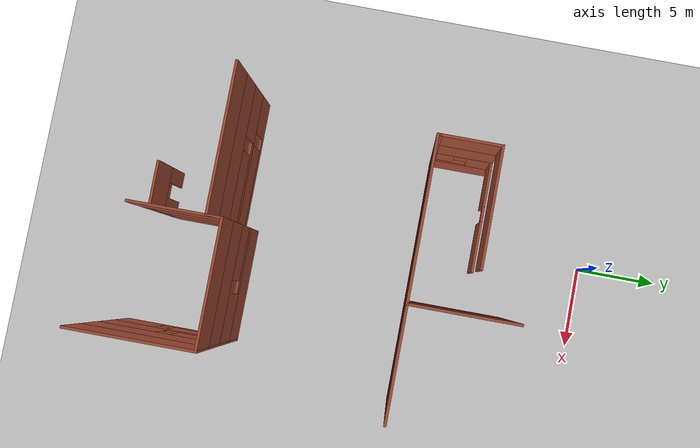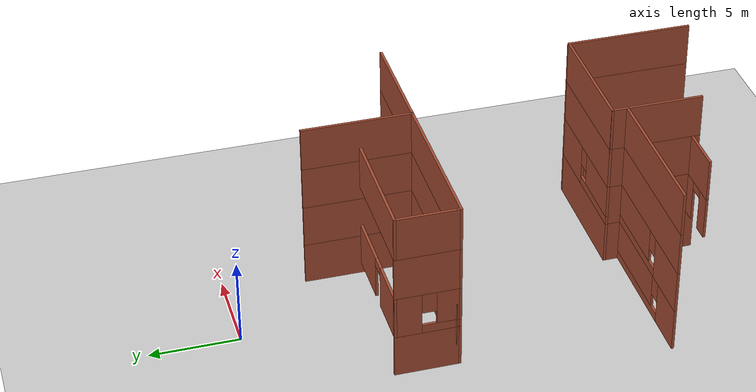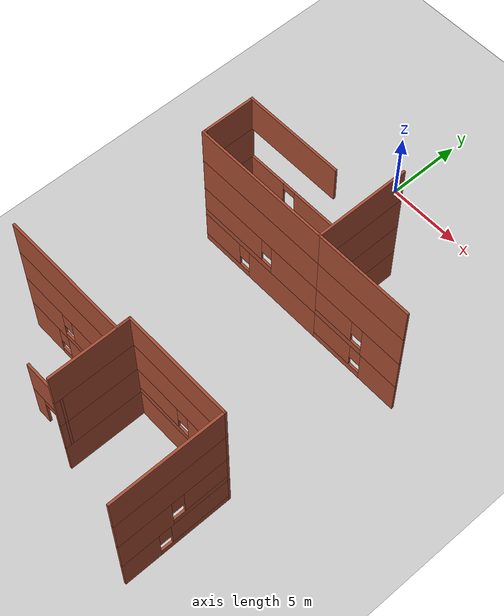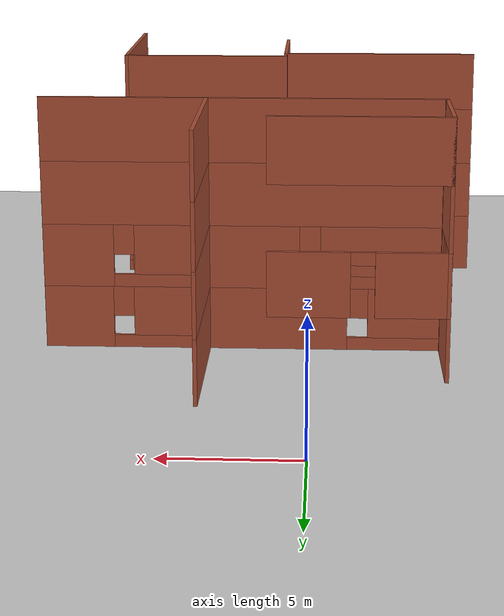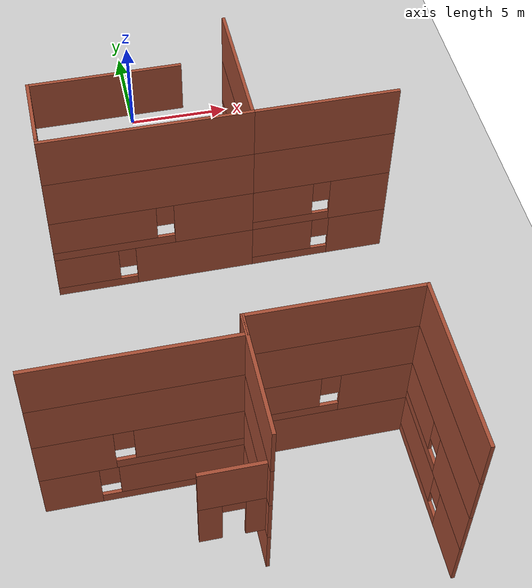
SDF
<sdf version="1.7">
 <world name="default">
  <model name="ground_plane">
   <static>1</static>
   <link name="link">
    <collision name="collision">
     <geometry><plane><normal>0 0 1</normal><size>300 300</size></plane></geometry>
     <surface>
      <contact><collide_bitmask>65535</collide_bitmask></contact>
      <friction><ode><mu>100</mu><mu2>50</mu2></ode></friction>
     </surface>
    </collision>
    <visual name="visual">
     <cast_shadows>0</cast_shadows>
     <geometry><plane><normal>0 0 1</normal><size>300 300</size></plane></geometry>
     <material>
      <script><uri>file://media/materials/scripts/gazebo.material</uri><name>Gazebo/Grey</name></script>
     </material>
    </visual>
   </link>
  </model>
  <model name="Drone_House">
   <pose>2.65602 -2.34694 0 0 -0 0</pose>
   <link name="Wall_100">
    <collision name="Wall_100_Collision">
     <geometry><box><size>6.25 0.15 2.5</size></box></geometry>
     <pose>0 0 1.25 0 -0 0</pose>
    </collision>
    <visual name="Wall_100_Visual">
     <pose>0 0 1.25 0 -0 0</pose>
     <geometry><box><size>6.25 0.15 2.5</size></box></geometry>
     <material>
      <script><uri>file://media/materials/scripts/gazebo.material</uri><name>Gazebo/Bricks</name></script>
      <ambient>1 1 1 1</ambient>
     </material>
     <meta><layer>2</layer></meta>
    </visual>
    <pose>1.37606 -5.3 5 0 -0 1.5708</pose>
   </link>
   <link name="Wall_102">
    <collision name="Wall_102_Collision">
     <geometry><box><size>3.5 0.15 2.5</size></box></geometry>
     <pose>0 0 1.25 0 -0 0</pose>
    </collision>
    <visual name="Wall_102_Visual">
     <pose>0 0 1.25 0 -0 0</pose>
     <geometry><box><size>3.5 0.15 2.5</size></box></geometry>
     <material>
      <script><uri>file://media/materials/scripts/gazebo.material</uri><name>Gazebo/Bricks</name></script>
      <ambient>1 1 1 1</ambient>
     </material>
     <meta><layer>2</layer></meta>
    </visual>
    <pose>-7.72394 -6.525 5 0 -0 -1.5708</pose>
   </link>
   <link name="Wall_103">
    <collision name="Wall_103_Collision">
     <geometry><box><size>0.15 0.15 2.5</size></box></geometry>
     <pose>0 0 1.25 0 -0 0</pose>
    </collision>
    <visual name="Wall_103_Visual">
     <pose>0 0 1.25 0 -0 0</pose>
     <geometry><box><size>0.15 0.15 2.5</size></box></geometry>
     <material>
      <script><uri>file://media/materials/scripts/gazebo.material</uri><name>Gazebo/Bricks</name></script>
      <ambient>1 1 1 1</ambient>
     </material>
     <meta><layer>2</layer></meta>
    </visual>
    <pose>-7.72394 -8.2 5 0 -0 0</pose>
   </link>
   <link name="Wall_104">
    <collision name="Wall_104_Collision">
     <geometry><box><size>9.25 0.15 2.5</size></box></geometry>
     <pose>0 0 1.25 0 -0 0</pose>
    </collision>
    <visual name="Wall_104_Visual">
     <pose>0 0 1.25 0 -0 0</pose>
     <geometry><box><size>9.25 0.15 2.5</size></box></geometry>
     <material>
      <script><uri>file://media/materials/scripts/gazebo.material</uri><name>Gazebo/Bricks</name></script>
      <ambient>1 1 1 1</ambient>
     </material>
     <meta><layer>2</layer></meta>
    </visual>
    <pose>-3.17394 -8.35 5 0 -0 3.14159</pose>
   </link>
   <link name="Wall_107">
    <collision name="Wall_107_Collision">
     <geometry><box><size>6.75 0.15 2.5</size></box></geometry>
     <pose>0 0 1.25 0 -0 0</pose>
    </collision>
    <visual name="Wall_107_Visual">
     <pose>0 0 1.25 0 -0 0</pose>
     <geometry><box><size>6.75 0.15 2.5</size></box></geometry>
     <material>
      <script><uri>file://media/materials/scripts/gazebo.material</uri><name>Gazebo/Bricks</name></script>
      <ambient>1 1 1 1</ambient>
     </material>
     <meta><layer>3</layer></meta>
    </visual>
    <pose>-4.42394 -4.85 7.5 0 -0 0</pose>
   </link>
   <link name="Wall_121">
    <collision name="Wall_121_Collision">
     <geometry><box><size>6.5 0.15 2.5</size></box></geometry>
     <pose>0 0 1.25 0 -0 0</pose>
    </collision>
    <visual name="Wall_121_Visual">
     <pose>0 0 1.25 0 -0 0</pose>
     <geometry><box><size>6.5 0.15 2.5</size></box></geometry>
     <material>
      <script><uri>file://media/materials/scripts/gazebo.material</uri><name>Gazebo/Bricks</name></script>
      <ambient>1 1 1 1</ambient>
     </material>
     <meta><layer>3</layer></meta>
    </visual>
    <pose>4.55106 -8.35 7.5 0 -0 3.14159</pose>
   </link>
   <link name="Wall_122">
    <collision name="Wall_122_Collision">
     <geometry><box><size>6.25 0.15 2.5</size></box></geometry>
     <pose>0 0 1.25 0 -0 0</pose>
    </collision>
    <visual name="Wall_122_Visual">
     <pose>0 0 1.25 0 -0 0</pose>
     <geometry><box><size>6.25 0.15 2.5</size></box></geometry>
     <material>
      <script><uri>file://media/materials/scripts/gazebo.material</uri><name>Gazebo/Bricks</name></script>
      <ambient>1 1 1 1</ambient>
     </material>
     <meta><layer>3</layer></meta>
    </visual>
    <pose>1.37606 -5.3 7.5 0 -0 1.5708</pose>
   </link>
   <link name="Wall_124">
    <collision name="Wall_124_Collision">
     <geometry><box><size>3.5 0.15 2.5</size></box></geometry>
     <pose>0 0 1.25 0 -0 0</pose>
    </collision>
    <visual name="Wall_124_Visual">
     <pose>0 0 1.25 0 -0 0</pose>
     <geometry><box><size>3.5 0.15 2.5</size></box></geometry>
     <material>
      <script><uri>file://media/materials/scripts/gazebo.material</uri><name>Gazebo/Bricks</name></script>
      <ambient>1 1 1 1</ambient>
     </material>
     <meta><layer>3</layer></meta>
    </visual>
    <pose>-7.72394 -6.525 7.5 0 -0 -1.5708</pose>
   </link>
   <link name="Wall_125">
    <collision name="Wall_125_Collision">
     <geometry><box><size>0.15 0.15 2.5</size></box></geometry>
     <pose>0 0 1.25 0 -0 0</pose>
    </collision>
    <visual name="Wall_125_Visual">
     <pose>0 0 1.25 0 -0 0</pose>
     <geometry><box><size>0.15 0.15 2.5</size></box></geometry>
     <material>
      <script><uri>file://media/materials/scripts/gazebo.material</uri><name>Gazebo/Bricks</name></script>
      <ambient>1 1 1 1</ambient>
     </material>
     <meta><layer>3</layer></meta>
    </visual>
    <pose>-7.72394 -8.2 7.5 0 -0 0</pose>
   </link>
   <link name="Wall_126">
    <collision name="Wall_126_Collision">
     <geometry><box><size>9.25 0.15 2.5</size></box></geometry>
     <pose>0 0 1.25 0 -0 0</pose>
    </collision>
    <visual name="Wall_126_Visual">
     <pose>0 0 1.25 0 -0 0</pose>
     <geometry><box><size>9.25 0.15 2.5</size></box></geometry>
     <material>
      <script><uri>file://media/materials/scripts/gazebo.material</uri><name>Gazebo/Bricks</name></script>
      <ambient>1 1 1 1</ambient>
     </material>
     <meta><layer>3</layer></meta>
    </visual>
    <pose>-3.17394 -8.35 7.5 0 -0 3.14159</pose>
   </link>
   <link name="Wall_24">
    <pose>4.55106 -8.35 0 0 -0 3.14159</pose>
    <visual name="Wall_24_Visual_0">
     <pose>-1.89698 0 1.25 0 -0 0</pose>
     <geometry><box><size>2.70603 0.15 2.5</size></box></geometry>
     <material>
      <script><uri>file://media/materials/scripts/gazebo.material</uri><name>Gazebo/Bricks</name></script>
      <ambient>1 1 1 1</ambient>
     </material>
     <meta><layer>0</layer></meta>
    </visual>
    <collision name="Wall_24_Collision_0">
     <geometry><box><size>2.70603 0.15 2.5</size></box></geometry>
     <pose>-1.89698 0 1.25 0 -0 0</pose>
    </collision>
    <visual name="Wall_24_Visual_1">
     <pose>1.35302 0 0.25 0 -0 0</pose>
     <geometry><box><size>3.79397 0.15 0.5</size></box></geometry>
     <material>
      <script><uri>file://media/materials/scripts/gazebo.material</uri><name>Gazebo/Bricks</name></script>
      <ambient>1 1 1 1</ambient>
     </material>
     <meta><layer>0</layer></meta>
    </visual>
    <collision name="Wall_24_Collision_1">
     <geometry><box><size>3.79397 0.15 0.5</size></box></geometry>
     <pose>1.35302 0 0.25 0 -0 0</pose>
    </collision>
    <visual name="Wall_24_Visual_2">
     <pose>1.75301 0 1.5 0 -0 0</pose>
     <geometry><box><size>2.99397 0.15 2</size></box></geometry>
     <material>
      <script><uri>file://media/materials/scripts/gazebo.material</uri><name>Gazebo/Bricks</name></script>
      <ambient>1 1 1 1</ambient>
     </material>
     <meta><layer>0</layer></meta>
    </visual>
    <collision name="Wall_24_Collision_2">
     <geometry><box><size>2.99397 0.15 2</size></box></geometry>
     <pose>1.75301 0 1.5 0 -0 0</pose>
    </collision>
    <visual name="Wall_24_Visual_3">
     <pose>-0.14397 0 1.9 0 -0 0</pose>
     <geometry><box><size>0.8 0.15 1.2</size></box></geometry>
     <material>
      <script><uri>file://media/materials/scripts/gazebo.material</uri><name>Gazebo/Bricks</name></script>
      <ambient>1 1 1 1</ambient>
     </material>
     <meta><layer>0</layer></meta>
    </visual>
    <collision name="Wall_24_Collision_3">
     <geometry><box><size>0.8 0.15 1.2</size></box></geometry>
     <pose>-0.14397 0 1.9 0 -0 0</pose>
    </collision>
   </link>
   <link name="Wall_25">
    <collision name="Wall_25_Collision">
     <geometry><box><size>6.25 0.15 2.5</size></box></geometry>
     <pose>0 0 1.25 0 -0 0</pose>
    </collision>
    <visual name="Wall_25_Visual">
     <pose>0 0 1.25 0 -0 0</pose>
     <geometry><box><size>6.25 0.15 2.5</size></box></geometry>
     <material>
      <script><uri>file://media/materials/scripts/gazebo.material</uri><name>Gazebo/Bricks</name></script>
      <ambient>1 1 1 1</ambient>
     </material>
     <meta><layer>0</layer></meta>
    </visual>
    <pose>1.37606 -5.3 0 0 -0 1.5708</pose>
   </link>
   <link name="Wall_28">
    <collision name="Wall_28_Collision">
     <geometry><box><size>3.5 0.15 2.5</size></box></geometry>
     <pose>0 0 1.25 0 -0 0</pose>
    </collision>
    <visual name="Wall_28_Visual">
     <pose>0 0 1.25 0 -0 0</pose>
     <geometry><box><size>3.5 0.15 2.5</size></box></geometry>
     <material>
      <script><uri>file://media/materials/scripts/gazebo.material</uri><name>Gazebo/Bricks</name></script>
      <ambient>1 1 1 1</ambient>
     </material>
     <meta><layer>0</layer></meta>
    </visual>
    <pose>-7.72394 -6.525 0 0 -0 -1.5708</pose>
   </link>
   <link name="Wall_29">
    <collision name="Wall_29_Collision">
     <geometry><box><size>0.15 0.15 2.5</size></box></geometry>
     <pose>0 0 1.25 0 -0 0</pose>
    </collision>
    <visual name="Wall_29_Visual">
     <pose>0 0 1.25 0 -0 0</pose>
     <geometry><box><size>0.15 0.15 2.5</size></box></geometry>
     <material>
      <script><uri>file://media/materials/scripts/gazebo.material</uri><name>Gazebo/Bricks</name></script>
      <ambient>1 1 1 1</ambient>
     </material>
     <meta><layer>0</layer></meta>
    </visual>
    <pose>-7.72394 -8.2 0 0 -0 0</pose>
   </link>
   <link name="Wall_31">
    <pose>-3.17394 -8.35 0 0 -0 3.14159</pose>
    <visual name="Wall_31_Visual_0">
     <pose>-1.87175 0 1.25 0 -0 0</pose>
     <geometry><box><size>5.5065 0.15 2.5</size></box></geometry>
     <material>
      <script><uri>file://media/materials/scripts/gazebo.material</uri><name>Gazebo/Bricks</name></script>
      <ambient>1 1 1 1</ambient>
     </material>
     <meta><layer>0</layer></meta>
    </visual>
    <collision name="Wall_31_Collision_0">
     <geometry><box><size>5.5065 0.15 2.5</size></box></geometry>
     <pose>-1.87175 0 1.25 0 -0 0</pose>
    </collision>
    <visual name="Wall_31_Visual_1">
     <pose>2.75325 0 0.25 0 -0 0</pose>
     <geometry><box><size>3.7435 0.15 0.5</size></box></geometry>
     <material>
      <script><uri>file://media/materials/scripts/gazebo.material</uri><name>Gazebo/Bricks</name></script>
      <ambient>1 1 1 1</ambient>
     </material>
     <meta><layer>0</layer></meta>
    </visual>
    <collision name="Wall_31_Collision_1">
     <geometry><box><size>3.7435 0.15 0.5</size></box></geometry>
     <pose>2.75325 0 0.25 0 -0 0</pose>
    </collision>
    <visual name="Wall_31_Visual_2">
     <pose>3.15325 0 1.5 0 -0 0</pose>
     <geometry><box><size>2.9435 0.15 2</size></box></geometry>
     <material>
      <script><uri>file://media/materials/scripts/gazebo.material</uri><name>Gazebo/Bricks</name></script>
      <ambient>1 1 1 1</ambient>
     </material>
     <meta><layer>0</layer></meta>
    </visual>
    <collision name="Wall_31_Collision_2">
     <geometry><box><size>2.9435 0.15 2</size></box></geometry>
     <pose>3.15325 0 1.5 0 -0 0</pose>
    </collision>
    <visual name="Wall_31_Visual_3">
     <pose>1.2815 0 1.9 0 -0 0</pose>
     <geometry><box><size>0.8 0.15 1.2</size></box></geometry>
     <material>
      <script><uri>file://media/materials/scripts/gazebo.material</uri><name>Gazebo/Bricks</name></script>
      <ambient>1 1 1 1</ambient>
     </material>
     <meta><layer>0</layer></meta>
    </visual>
    <collision name="Wall_31_Collision_3">
     <geometry><box><size>0.8 0.15 1.2</size></box></geometry>
     <pose>1.2815 0 1.9 0 -0 0</pose>
    </collision>
   </link>
   <link name="Wall_36">
    <pose>-4.42394 -4.85 2.5 0 -0 0</pose>
    <visual name="Wall_36_Visual_0">
     <pose>-1.98145 0 1.25 0 -0 0</pose>
     <geometry><box><size>2.7871 0.15 2.5</size></box></geometry>
     <material>
      <script><uri>file://media/materials/scripts/gazebo.material</uri><name>Gazebo/Bricks</name></script>
      <ambient>1 1 1 1</ambient>
     </material>
     <meta><layer>1</layer></meta>
    </visual>
    <collision name="Wall_36_Collision_0">
     <geometry><box><size>2.7871 0.15 2.5</size></box></geometry>
     <pose>-1.98145 0 1.25 0 -0 0</pose>
    </collision>
    <visual name="Wall_36_Visual_1">
     <pose>1.84355 0 1.25 0 -0 0</pose>
     <geometry><box><size>3.0629 0.15 2.5</size></box></geometry>
     <material>
      <script><uri>file://media/materials/scripts/gazebo.material</uri><name>Gazebo/Bricks</name></script>
      <ambient>1 1 1 1</ambient>
     </material>
     <meta><layer>1</layer></meta>
    </visual>
    <collision name="Wall_36_Collision_1">
     <geometry><box><size>3.0629 0.15 2.5</size></box></geometry>
     <pose>1.84355 0 1.25 0 -0 0</pose>
    </collision>
    <visual name="Wall_36_Visual_2">
     <pose>-0.1379 0 2.25 0 -0 0</pose>
     <geometry><box><size>0.9 0.15 0.5</size></box></geometry>
     <material>
      <script><uri>file://media/materials/scripts/gazebo.material</uri><name>Gazebo/Bricks</name></script>
      <ambient>1 1 1 1</ambient>
     </material>
     <meta><layer>1</layer></meta>
    </visual>
    <collision name="Wall_36_Collision_2">
     <geometry><box><size>0.9 0.15 0.5</size></box></geometry>
     <pose>-0.1379 0 2.25 0 -0 0</pose>
    </collision>
   </link>
   <link name="Wall_50">
    <pose>4.55106 -8.35 2.5 0 -0 3.14159</pose>
    <visual name="Wall_50_Visual_0">
     <pose>-1.87038 0 1.25 0 -0 0</pose>
     <geometry><box><size>2.75923 0.15 2.5</size></box></geometry>
     <material>
      <script><uri>file://media/materials/scripts/gazebo.material</uri><name>Gazebo/Bricks</name></script>
      <ambient>1 1 1 1</ambient>
     </material>
     <meta><layer>1</layer></meta>
    </visual>
    <collision name="Wall_50_Collision_0">
     <geometry><box><size>2.75923 0.15 2.5</size></box></geometry>
     <pose>-1.87038 0 1.25 0 -0 0</pose>
    </collision>
    <visual name="Wall_50_Visual_1">
     <pose>1.37962 0 0.25 0 -0 0</pose>
     <geometry><box><size>3.74077 0.15 0.5</size></box></geometry>
     <material>
      <script><uri>file://media/materials/scripts/gazebo.material</uri><name>Gazebo/Bricks</name></script>
      <ambient>1 1 1 1</ambient>
     </material>
     <meta><layer>1</layer></meta>
    </visual>
    <collision name="Wall_50_Collision_1">
     <geometry><box><size>3.74077 0.15 0.5</size></box></geometry>
     <pose>1.37962 0 0.25 0 -0 0</pose>
    </collision>
    <visual name="Wall_50_Visual_2">
     <pose>1.77961 0 1.5 0 -0 0</pose>
     <geometry><box><size>2.94077 0.15 2</size></box></geometry>
     <material>
      <script><uri>file://media/materials/scripts/gazebo.material</uri><name>Gazebo/Bricks</name></script>
      <ambient>1 1 1 1</ambient>
     </material>
     <meta><layer>1</layer></meta>
    </visual>
    <collision name="Wall_50_Collision_2">
     <geometry><box><size>2.94077 0.15 2</size></box></geometry>
     <pose>1.77961 0 1.5 0 -0 0</pose>
    </collision>
    <visual name="Wall_50_Visual_3">
     <pose>-0.090769 0 1.9 0 -0 0</pose>
     <geometry><box><size>0.8 0.15 1.2</size></box></geometry>
     <material>
      <script><uri>file://media/materials/scripts/gazebo.material</uri><name>Gazebo/Bricks</name></script>
      <ambient>1 1 1 1</ambient>
     </material>
     <meta><layer>1</layer></meta>
    </visual>
    <collision name="Wall_50_Collision_3">
     <geometry><box><size>0.8 0.15 1.2</size></box></geometry>
     <pose>-0.090769 0 1.9 0 -0 0</pose>
    </collision>
   </link>
   <link name="Wall_51">
    <collision name="Wall_51_Collision">
     <geometry><box><size>6.25 0.15 2.5</size></box></geometry>
     <pose>0 0 1.25 0 -0 0</pose>
    </collision>
    <visual name="Wall_51_Visual">
     <pose>0 0 1.25 0 -0 0</pose>
     <geometry><box><size>6.25 0.15 2.5</size></box></geometry>
     <material>
      <script><uri>file://media/materials/scripts/gazebo.material</uri><name>Gazebo/Bricks</name></script>
      <ambient>1 1 1 1</ambient>
     </material>
     <meta><layer>1</layer></meta>
    </visual>
    <pose>1.37606 -5.3 2.5 0 -0 1.5708</pose>
   </link>
   <link name="Wall_53">
    <pose>-7.72394 -6.525 2.5 0 -0 -1.5708</pose>
    <visual name="Wall_53_Visual_0">
     <pose>-0.996881 0 1.25 0 -0 0</pose>
     <geometry><box><size>1.50624 0.15 2.5</size></box></geometry>
     <material>
      <script><uri>file://media/materials/scripts/gazebo.material</uri><name>Gazebo/Bricks</name></script>
      <ambient>1 1 1 1</ambient>
     </material>
     <meta><layer>1</layer></meta>
    </visual>
    <collision name="Wall_53_Collision_0">
     <geometry><box><size>1.50624 0.15 2.5</size></box></geometry>
     <pose>-0.996881 0 1.25 0 -0 0</pose>
    </collision>
    <visual name="Wall_53_Visual_1">
     <pose>0.753119 0 0.25 0 -0 0</pose>
     <geometry><box><size>1.99376 0.15 0.5</size></box></geometry>
     <material>
      <script><uri>file://media/materials/scripts/gazebo.material</uri><name>Gazebo/Bricks</name></script>
      <ambient>1 1 1 1</ambient>
     </material>
     <meta><layer>1</layer></meta>
    </visual>
    <collision name="Wall_53_Collision_1">
     <geometry><box><size>1.99376 0.15 0.5</size></box></geometry>
     <pose>0.753119 0 0.25 0 -0 0</pose>
    </collision>
    <visual name="Wall_53_Visual_2">
     <pose>1.15312 0 1.5 0 -0 0</pose>
     <geometry><box><size>1.19376 0.15 2</size></box></geometry>
     <material>
      <script><uri>file://media/materials/scripts/gazebo.material</uri><name>Gazebo/Bricks</name></script>
      <ambient>1 1 1 1</ambient>
     </material>
     <meta><layer>1</layer></meta>
    </visual>
    <collision name="Wall_53_Collision_2">
     <geometry><box><size>1.19376 0.15 2</size></box></geometry>
     <pose>1.15312 0 1.5 0 -0 0</pose>
    </collision>
    <visual name="Wall_53_Visual_3">
     <pose>0.156238 0 1.9 0 -0 0</pose>
     <geometry><box><size>0.8 0.15 1.2</size></box></geometry>
     <material>
      <script><uri>file://media/materials/scripts/gazebo.material</uri><name>Gazebo/Bricks</name></script>
      <ambient>1 1 1 1</ambient>
     </material>
     <meta><layer>1</layer></meta>
    </visual>
    <collision name="Wall_53_Collision_3">
     <geometry><box><size>0.8 0.15 1.2</size></box></geometry>
     <pose>0.156238 0 1.9 0 -0 0</pose>
    </collision>
   </link>
   <link name="Wall_54">
    <collision name="Wall_54_Collision">
     <geometry><box><size>0.15 0.15 2.5</size></box></geometry>
     <pose>0 0 1.25 0 -0 0</pose>
    </collision>
    <visual name="Wall_54_Visual">
     <pose>0 0 1.25 0 -0 0</pose>
     <geometry><box><size>0.15 0.15 2.5</size></box></geometry>
     <material>
      <script><uri>file://media/materials/scripts/gazebo.material</uri><name>Gazebo/Bricks</name></script>
      <ambient>1 1 1 1</ambient>
     </material>
     <meta><layer>1</layer></meta>
    </visual>
    <pose>-7.72394 -8.2 2.5 0 -0 0</pose>
   </link>
   <link name="Wall_55">
    <pose>-3.17394 -8.35 2.5 0 -0 3.14159</pose>
    <visual name="Wall_55_Visual_0">
     <pose>-2.80276 0 1.25 0 -0 0</pose>
     <geometry><box><size>3.64448 0.15 2.5</size></box></geometry>
     <material>
      <script><uri>file://media/materials/scripts/gazebo.material</uri><name>Gazebo/Bricks</name></script>
      <ambient>1 1 1 1</ambient>
     </material>
     <meta><layer>1</layer></meta>
    </visual>
    <collision name="Wall_55_Collision_0">
     <geometry><box><size>3.64448 0.15 2.5</size></box></geometry>
     <pose>-2.80276 0 1.25 0 -0 0</pose>
    </collision>
    <visual name="Wall_55_Visual_1">
     <pose>1.82224 0 0.25 0 -0 0</pose>
     <geometry><box><size>5.60551 0.15 0.5</size></box></geometry>
     <material>
      <script><uri>file://media/materials/scripts/gazebo.material</uri><name>Gazebo/Bricks</name></script>
      <ambient>1 1 1 1</ambient>
     </material>
     <meta><layer>1</layer></meta>
    </visual>
    <collision name="Wall_55_Collision_1">
     <geometry><box><size>5.60551 0.15 0.5</size></box></geometry>
     <pose>1.82224 0 0.25 0 -0 0</pose>
    </collision>
    <visual name="Wall_55_Visual_2">
     <pose>2.22224 0 1.5 0 -0 0</pose>
     <geometry><box><size>4.80551 0.15 2</size></box></geometry>
     <material>
      <script><uri>file://media/materials/scripts/gazebo.material</uri><name>Gazebo/Bricks</name></script>
      <ambient>1 1 1 1</ambient>
     </material>
     <meta><layer>1</layer></meta>
    </visual>
    <collision name="Wall_55_Collision_2">
     <geometry><box><size>4.80551 0.15 2</size></box></geometry>
     <pose>2.22224 0 1.5 0 -0 0</pose>
    </collision>
    <visual name="Wall_55_Visual_3">
     <pose>-0.580515 0 1.9 0 -0 0</pose>
     <geometry><box><size>0.8 0.15 1.2</size></box></geometry>
     <material>
      <script><uri>file://media/materials/scripts/gazebo.material</uri><name>Gazebo/Bricks</name></script>
      <ambient>1 1 1 1</ambient>
     </material>
     <meta><layer>1</layer></meta>
    </visual>
    <collision name="Wall_55_Collision_3">
     <geometry><box><size>0.8 0.15 1.2</size></box></geometry>
     <pose>-0.580515 0 1.9 0 -0 0</pose>
    </collision>
   </link>
   <link name="Wall_99">
    <collision name="Wall_99_Collision">
     <geometry><box><size>6.5 0.15 2.5</size></box></geometry>
     <pose>0 0 1.25 0 -0 0</pose>
    </collision>
    <visual name="Wall_99_Visual">
     <pose>0 0 1.25 0 -0 0</pose>
     <geometry><box><size>6.5 0.15 2.5</size></box></geometry>
     <material>
      <script><uri>file://media/materials/scripts/gazebo.material</uri><name>Gazebo/Bricks</name></script>
      <ambient>1 1 1 1</ambient>
     </material>
     <meta><layer>2</layer></meta>
    </visual>
    <pose>4.55106 -8.35 5 0 -0 3.14159</pose>
   </link>
   <static>1</static>
  </model>
  <model name="Drone_House_0">
   <pose>0.722097 -29.4245 0 0 -0 0</pose>
   <link name="Wall_10">
    <collision name="Wall_10_Collision">
     <geometry><box><size>1 0.15 2.5</size></box></geometry>
     <pose>0 0 1.25 0 -0 0</pose>
    </collision>
    <visual name="Wall_10_Visual">
     <pose>0 0 1.25 0 -0 0</pose>
     <geometry><box><size>1 0.15 2.5</size></box></geometry>
     <material>
      <script><uri>file://media/materials/scripts/gazebo.material</uri><name>Gazebo/Bricks</name></script>
      <ambient>1 1 1 1</ambient>
     </material>
     <meta><layer>0</layer></meta>
    </visual>
    <pose>0.626064 7.925 0 0 -0 1.5708</pose>
   </link>
   <link name="Wall_109">
    <collision name="Wall_109_Collision">
     <geometry><box><size>8.5 0.15 2.5</size></box></geometry>
     <pose>0 0 1.25 0 -0 0</pose>
    </collision>
    <visual name="Wall_109_Visual">
     <pose>0 0 1.25 0 -0 0</pose>
     <geometry><box><size>8.5 0.15 2.5</size></box></geometry>
     <material>
      <script><uri>file://media/materials/scripts/gazebo.material</uri><name>Gazebo/Bricks</name></script>
      <ambient>1 1 1 1</ambient>
     </material>
     <meta><layer>3</layer></meta>
    </visual>
    <pose>-3.54894 7.5 7.5 0 -0 0</pose>
   </link>
   <link name="Wall_11">
    <collision name="Wall_11_Collision">
     <geometry><box><size>5.25 0.15 2.5</size></box></geometry>
     <pose>0 0 1.25 0 -0 0</pose>
    </collision>
    <visual name="Wall_11_Visual">
     <pose>0 0 1.25 0 -0 0</pose>
     <geometry><box><size>5.25 0.15 2.5</size></box></geometry>
     <material>
      <script><uri>file://media/materials/scripts/gazebo.material</uri><name>Gazebo/Bricks</name></script>
      <ambient>1 1 1 1</ambient>
     </material>
     <meta><layer>0</layer></meta>
    </visual>
    <pose>0.626064 5.8 0 0 -0 -1.5708</pose>
   </link>
   <link name="Wall_110">
    <collision name="Wall_110_Collision">
     <geometry><box><size>1 0.15 2.5</size></box></geometry>
     <pose>0 0 1.25 0 -0 0</pose>
    </collision>
    <visual name="Wall_110_Visual">
     <pose>0 0 1.25 0 -0 0</pose>
     <geometry><box><size>1 0.15 2.5</size></box></geometry>
     <material>
      <script><uri>file://media/materials/scripts/gazebo.material</uri><name>Gazebo/Bricks</name></script>
      <ambient>1 1 1 1</ambient>
     </material>
     <meta><layer>3</layer></meta>
    </visual>
    <pose>0.626064 7.925 7.5 0 -0 1.5708</pose>
   </link>
   <link name="Wall_111">
    <collision name="Wall_111_Collision">
     <geometry><box><size>5.25 0.15 2.5</size></box></geometry>
     <pose>0 0 1.25 0 -0 0</pose>
    </collision>
    <visual name="Wall_111_Visual">
     <pose>0 0 1.25 0 -0 0</pose>
     <geometry><box><size>5.25 0.15 2.5</size></box></geometry>
     <material>
      <script><uri>file://media/materials/scripts/gazebo.material</uri><name>Gazebo/Bricks</name></script>
      <ambient>1 1 1 1</ambient>
     </material>
     <meta><layer>3</layer></meta>
    </visual>
    <pose>0.626064 5.8 7.5 0 -0 -1.5708</pose>
   </link>
   <link name="Wall_118">
    <collision name="Wall_118_Collision">
     <geometry><box><size>7.25 0.15 2.5</size></box></geometry>
     <pose>0 0 1.25 0 -0 0</pose>
    </collision>
    <visual name="Wall_118_Visual">
     <pose>0 0 1.25 0 -0 0</pose>
     <geometry><box><size>7.25 0.15 2.5</size></box></geometry>
     <material>
      <script><uri>file://media/materials/scripts/gazebo.material</uri><name>Gazebo/Bricks</name></script>
      <ambient>1 1 1 1</ambient>
     </material>
     <meta><layer>3</layer></meta>
    </visual>
    <pose>7.72606 4.8 7.5 0 -0 1.5708</pose>
   </link>
   <link name="Wall_119">
    <collision name="Wall_119_Collision">
     <geometry><box><size>7.25 0.15 2.5</size></box></geometry>
     <pose>0 0 1.25 0 -0 0</pose>
    </collision>
    <visual name="Wall_119_Visual">
     <pose>0 0 1.25 0 -0 0</pose>
     <geometry><box><size>7.25 0.15 2.5</size></box></geometry>
     <material>
      <script><uri>file://media/materials/scripts/gazebo.material</uri><name>Gazebo/Bricks</name></script>
      <ambient>1 1 1 1</ambient>
     </material>
     <meta><layer>3</layer></meta>
    </visual>
    <pose>4.17606 8.35 7.5 0 -0 3.14159</pose>
   </link>
   <link name="Wall_20">
    <pose>7.72606 4.8 0 0 -0 1.5708</pose>
    <visual name="Wall_20_Visual_0">
     <pose>-2.40648 0 1.25 0 -0 0</pose>
     <geometry><box><size>2.43704 0.15 2.5</size></box></geometry>
     <material>
      <script><uri>file://media/materials/scripts/gazebo.material</uri><name>Gazebo/Bricks</name></script>
      <ambient>1 1 1 1</ambient>
     </material>
     <meta><layer>0</layer></meta>
    </visual>
    <collision name="Wall_20_Collision_0">
     <geometry><box><size>2.43704 0.15 2.5</size></box></geometry>
     <pose>-2.40648 0 1.25 0 -0 0</pose>
    </collision>
    <visual name="Wall_20_Visual_1">
     <pose>1.21852 0 0.25 0 -0 0</pose>
     <geometry><box><size>4.81296 0.15 0.5</size></box></geometry>
     <material>
      <script><uri>file://media/materials/scripts/gazebo.material</uri><name>Gazebo/Bricks</name></script>
      <ambient>1 1 1 1</ambient>
     </material>
     <meta><layer>0</layer></meta>
    </visual>
    <collision name="Wall_20_Collision_1">
     <geometry><box><size>4.81296 0.15 0.5</size></box></geometry>
     <pose>1.21852 0 0.25 0 -0 0</pose>
    </collision>
    <visual name="Wall_20_Visual_2">
     <pose>1.61852 0 1.5 0 -0 0</pose>
     <geometry><box><size>4.01296 0.15 2</size></box></geometry>
     <material>
      <script><uri>file://media/materials/scripts/gazebo.material</uri><name>Gazebo/Bricks</name></script>
      <ambient>1 1 1 1</ambient>
     </material>
     <meta><layer>0</layer></meta>
    </visual>
    <collision name="Wall_20_Collision_2">
     <geometry><box><size>4.01296 0.15 2</size></box></geometry>
     <pose>1.61852 0 1.5 0 -0 0</pose>
    </collision>
    <visual name="Wall_20_Visual_3">
     <pose>-0.787959 0 1.9 0 -0 0</pose>
     <geometry><box><size>0.8 0.15 1.2</size></box></geometry>
     <material>
      <script><uri>file://media/materials/scripts/gazebo.material</uri><name>Gazebo/Bricks</name></script>
      <ambient>1 1 1 1</ambient>
     </material>
     <meta><layer>0</layer></meta>
    </visual>
    <collision name="Wall_20_Collision_3">
     <geometry><box><size>0.8 0.15 1.2</size></box></geometry>
     <pose>-0.787959 0 1.9 0 -0 0</pose>
    </collision>
   </link>
   <link name="Wall_21">
    <collision name="Wall_21_Collision">
     <geometry><box><size>7.25 0.15 2.5</size></box></geometry>
     <pose>0 0 1.25 0 -0 0</pose>
    </collision>
    <visual name="Wall_21_Visual">
     <pose>0 0 1.25 0 -0 0</pose>
     <geometry><box><size>7.25 0.15 2.5</size></box></geometry>
     <material>
      <script><uri>file://media/materials/scripts/gazebo.material</uri><name>Gazebo/Bricks</name></script>
      <ambient>1 1 1 1</ambient>
     </material>
     <meta><layer>0</layer></meta>
    </visual>
    <pose>4.17606 8.35 0 0 -0 3.14159</pose>
   </link>
   <link name="Wall_38">
    <pose>-3.54894 7.5 2.5 0 -0 0</pose>
    <visual name="Wall_38_Visual_0">
     <pose>-2.67185 0 1.25 0 -0 0</pose>
     <geometry><box><size>3.1563 0.15 2.5</size></box></geometry>
     <material>
      <script><uri>file://media/materials/scripts/gazebo.material</uri><name>Gazebo/Bricks</name></script>
      <ambient>1 1 1 1</ambient>
     </material>
     <meta><layer>1</layer></meta>
    </visual>
    <collision name="Wall_38_Collision_0">
     <geometry><box><size>3.1563 0.15 2.5</size></box></geometry>
     <pose>-2.67185 0 1.25 0 -0 0</pose>
    </collision>
    <visual name="Wall_38_Visual_1">
     <pose>1.57815 0 0.25 0 -0 0</pose>
     <geometry><box><size>5.3437 0.15 0.5</size></box></geometry>
     <material>
      <script><uri>file://media/materials/scripts/gazebo.material</uri><name>Gazebo/Bricks</name></script>
      <ambient>1 1 1 1</ambient>
     </material>
     <meta><layer>1</layer></meta>
    </visual>
    <collision name="Wall_38_Collision_1">
     <geometry><box><size>5.3437 0.15 0.5</size></box></geometry>
     <pose>1.57815 0 0.25 0 -0 0</pose>
    </collision>
    <visual name="Wall_38_Visual_2">
     <pose>1.97815 0 1.5 0 -0 0</pose>
     <geometry><box><size>4.5437 0.15 2</size></box></geometry>
     <material>
      <script><uri>file://media/materials/scripts/gazebo.material</uri><name>Gazebo/Bricks</name></script>
      <ambient>1 1 1 1</ambient>
     </material>
     <meta><layer>1</layer></meta>
    </visual>
    <collision name="Wall_38_Collision_2">
     <geometry><box><size>4.5437 0.15 2</size></box></geometry>
     <pose>1.97815 0 1.5 0 -0 0</pose>
    </collision>
    <visual name="Wall_38_Visual_3">
     <pose>-0.693697 0 1.9 0 -0 0</pose>
     <geometry><box><size>0.8 0.15 1.2</size></box></geometry>
     <material>
      <script><uri>file://media/materials/scripts/gazebo.material</uri><name>Gazebo/Bricks</name></script>
      <ambient>1 1 1 1</ambient>
     </material>
     <meta><layer>1</layer></meta>
    </visual>
    <collision name="Wall_38_Collision_3">
     <geometry><box><size>0.8 0.15 1.2</size></box></geometry>
     <pose>-0.693697 0 1.9 0 -0 0</pose>
    </collision>
   </link>
   <link name="Wall_39">
    <collision name="Wall_39_Collision">
     <geometry><box><size>1 0.15 2.5</size></box></geometry>
     <pose>0 0 1.25 0 -0 0</pose>
    </collision>
    <visual name="Wall_39_Visual">
     <pose>0 0 1.25 0 -0 0</pose>
     <geometry><box><size>1 0.15 2.5</size></box></geometry>
     <material>
      <script><uri>file://media/materials/scripts/gazebo.material</uri><name>Gazebo/Bricks</name></script>
      <ambient>1 1 1 1</ambient>
     </material>
     <meta><layer>1</layer></meta>
    </visual>
    <pose>0.626064 7.925 2.5 0 -0 1.5708</pose>
   </link>
   <link name="Wall_40">
    <collision name="Wall_40_Collision">
     <geometry><box><size>5.25 0.15 2.5</size></box></geometry>
     <pose>0 0 1.25 0 -0 0</pose>
    </collision>
    <visual name="Wall_40_Visual">
     <pose>0 0 1.25 0 -0 0</pose>
     <geometry><box><size>5.25 0.15 2.5</size></box></geometry>
     <material>
      <script><uri>file://media/materials/scripts/gazebo.material</uri><name>Gazebo/Bricks</name></script>
      <ambient>1 1 1 1</ambient>
     </material>
     <meta><layer>1</layer></meta>
    </visual>
    <pose>0.626064 5.8 2.5 0 -0 -1.5708</pose>
   </link>
   <link name="Wall_42">
    <pose>-0.673936 3.6 2.5 0 -0 3.14159</pose>
    <visual name="Wall_42_Visual_0">
     <pose>-0.910365 0 1.25 0 -0 0</pose>
     <geometry><box><size>0.929271 0.15 2.5</size></box></geometry>
     <material>
      <script><uri>file://media/materials/scripts/gazebo.material</uri><name>Gazebo/Bricks</name></script>
      <ambient>1 1 1 1</ambient>
     </material>
     <meta><layer>1</layer></meta>
    </visual>
    <collision name="Wall_42_Collision_0">
     <geometry><box><size>0.929271 0.15 2.5</size></box></geometry>
     <pose>-0.910365 0 1.25 0 -0 0</pose>
    </collision>
    <visual name="Wall_42_Visual_1">
     <pose>0.914635 0 1.25 0 -0 0</pose>
     <geometry><box><size>0.920729 0.15 2.5</size></box></geometry>
     <material>
      <script><uri>file://media/materials/scripts/gazebo.material</uri><name>Gazebo/Bricks</name></script>
      <ambient>1 1 1 1</ambient>
     </material>
     <meta><layer>1</layer></meta>
    </visual>
    <collision name="Wall_42_Collision_1">
     <geometry><box><size>0.920729 0.15 2.5</size></box></geometry>
     <pose>0.914635 0 1.25 0 -0 0</pose>
    </collision>
    <visual name="Wall_42_Visual_2">
     <pose>0.004271 0 2.25 0 -0 0</pose>
     <geometry><box><size>0.9 0.15 0.5</size></box></geometry>
     <material>
      <script><uri>file://media/materials/scripts/gazebo.material</uri><name>Gazebo/Bricks</name></script>
      <ambient>1 1 1 1</ambient>
     </material>
     <meta><layer>1</layer></meta>
    </visual>
    <collision name="Wall_42_Collision_2">
     <geometry><box><size>0.9 0.15 0.5</size></box></geometry>
     <pose>0.004271 0 2.25 0 -0 0</pose>
    </collision>
   </link>
   <link name="Wall_47">
    <pose>7.72606 4.8 2.5 0 -0 1.5708</pose>
    <visual name="Wall_47_Visual_0">
     <pose>-1.90108 0 1.25 0 -0 0</pose>
     <geometry><box><size>3.44785 0.15 2.5</size></box></geometry>
     <material>
      <script><uri>file://media/materials/scripts/gazebo.material</uri><name>Gazebo/Bricks</name></script>
      <ambient>1 1 1 1</ambient>
     </material>
     <meta><layer>1</layer></meta>
    </visual>
    <collision name="Wall_47_Collision_0">
     <geometry><box><size>3.44785 0.15 2.5</size></box></geometry>
     <pose>-1.90108 0 1.25 0 -0 0</pose>
    </collision>
    <visual name="Wall_47_Visual_1">
     <pose>1.72392 0 0.25 0 -0 0</pose>
     <geometry><box><size>3.80215 0.15 0.5</size></box></geometry>
     <material>
      <script><uri>file://media/materials/scripts/gazebo.material</uri><name>Gazebo/Bricks</name></script>
      <ambient>1 1 1 1</ambient>
     </material>
     <meta><layer>1</layer></meta>
    </visual>
    <collision name="Wall_47_Collision_1">
     <geometry><box><size>3.80215 0.15 0.5</size></box></geometry>
     <pose>1.72392 0 0.25 0 -0 0</pose>
    </collision>
    <visual name="Wall_47_Visual_2">
     <pose>2.12392 0 1.5 0 -0 0</pose>
     <geometry><box><size>3.00215 0.15 2</size></box></geometry>
     <material>
      <script><uri>file://media/materials/scripts/gazebo.material</uri><name>Gazebo/Bricks</name></script>
      <ambient>1 1 1 1</ambient>
     </material>
     <meta><layer>1</layer></meta>
    </visual>
    <collision name="Wall_47_Collision_2">
     <geometry><box><size>3.00215 0.15 2</size></box></geometry>
     <pose>2.12392 0 1.5 0 -0 0</pose>
    </collision>
    <visual name="Wall_47_Visual_3">
     <pose>0.222849 0 1.9 0 -0 0</pose>
     <geometry><box><size>0.8 0.15 1.2</size></box></geometry>
     <material>
      <script><uri>file://media/materials/scripts/gazebo.material</uri><name>Gazebo/Bricks</name></script>
      <ambient>1 1 1 1</ambient>
     </material>
     <meta><layer>1</layer></meta>
    </visual>
    <collision name="Wall_47_Collision_3">
     <geometry><box><size>0.8 0.15 1.2</size></box></geometry>
     <pose>0.222849 0 1.9 0 -0 0</pose>
    </collision>
   </link>
   <link name="Wall_48">
    <pose>4.17606 8.35 2.5 0 -0 3.14159</pose>
    <visual name="Wall_48_Visual_0">
     <pose>-2.07248 0 1.25 0 -0 0</pose>
     <geometry><box><size>3.10503 0.15 2.5</size></box></geometry>
     <material>
      <script><uri>file://media/materials/scripts/gazebo.material</uri><name>Gazebo/Bricks</name></script>
      <ambient>1 1 1 1</ambient>
     </material>
     <meta><layer>1</layer></meta>
    </visual>
    <collision name="Wall_48_Collision_0">
     <geometry><box><size>3.10503 0.15 2.5</size></box></geometry>
     <pose>-2.07248 0 1.25 0 -0 0</pose>
    </collision>
    <visual name="Wall_48_Visual_1">
     <pose>1.55252 0 0.25 0 -0 0</pose>
     <geometry><box><size>4.14497 0.15 0.5</size></box></geometry>
     <material>
      <script><uri>file://media/materials/scripts/gazebo.material</uri><name>Gazebo/Bricks</name></script>
      <ambient>1 1 1 1</ambient>
     </material>
     <meta><layer>1</layer></meta>
    </visual>
    <collision name="Wall_48_Collision_1">
     <geometry><box><size>4.14497 0.15 0.5</size></box></geometry>
     <pose>1.55252 0 0.25 0 -0 0</pose>
    </collision>
    <visual name="Wall_48_Visual_2">
     <pose>1.95252 0 1.5 0 -0 0</pose>
     <geometry><box><size>3.34497 0.15 2</size></box></geometry>
     <material>
      <script><uri>file://media/materials/scripts/gazebo.material</uri><name>Gazebo/Bricks</name></script>
      <ambient>1 1 1 1</ambient>
     </material>
     <meta><layer>1</layer></meta>
    </visual>
    <collision name="Wall_48_Collision_2">
     <geometry><box><size>3.34497 0.15 2</size></box></geometry>
     <pose>1.95252 0 1.5 0 -0 0</pose>
    </collision>
    <visual name="Wall_48_Visual_3">
     <pose>-0.119967 0 1.9 0 -0 0</pose>
     <geometry><box><size>0.8 0.15 1.2</size></box></geometry>
     <material>
      <script><uri>file://media/materials/scripts/gazebo.material</uri><name>Gazebo/Bricks</name></script>
      <ambient>1 1 1 1</ambient>
     </material>
     <meta><layer>1</layer></meta>
    </visual>
    <collision name="Wall_48_Collision_3">
     <geometry><box><size>0.8 0.15 1.2</size></box></geometry>
     <pose>-0.119967 0 1.9 0 -0 0</pose>
    </collision>
   </link>
   <link name="Wall_87">
    <collision name="Wall_87_Collision">
     <geometry><box><size>8.5 0.15 2.5</size></box></geometry>
     <pose>0 0 1.25 0 -0 0</pose>
    </collision>
    <visual name="Wall_87_Visual">
     <pose>0 0 1.25 0 -0 0</pose>
     <geometry><box><size>8.5 0.15 2.5</size></box></geometry>
     <material>
      <script><uri>file://media/materials/scripts/gazebo.material</uri><name>Gazebo/Bricks</name></script>
      <ambient>1 1 1 1</ambient>
     </material>
     <meta><layer>2</layer></meta>
    </visual>
    <pose>-3.54894 7.5 5 0 -0 0</pose>
   </link>
   <link name="Wall_88">
    <collision name="Wall_88_Collision">
     <geometry><box><size>1 0.15 2.5</size></box></geometry>
     <pose>0 0 1.25 0 -0 0</pose>
    </collision>
    <visual name="Wall_88_Visual">
     <pose>0 0 1.25 0 -0 0</pose>
     <geometry><box><size>1 0.15 2.5</size></box></geometry>
     <material>
      <script><uri>file://media/materials/scripts/gazebo.material</uri><name>Gazebo/Bricks</name></script>
      <ambient>1 1 1 1</ambient>
     </material>
     <meta><layer>2</layer></meta>
    </visual>
    <pose>0.626064 7.925 5 0 -0 1.5708</pose>
   </link>
   <link name="Wall_89">
    <collision name="Wall_89_Collision">
     <geometry><box><size>5.25 0.15 2.5</size></box></geometry>
     <pose>0 0 1.25 0 -0 0</pose>
    </collision>
    <visual name="Wall_89_Visual">
     <pose>0 0 1.25 0 -0 0</pose>
     <geometry><box><size>5.25 0.15 2.5</size></box></geometry>
     <material>
      <script><uri>file://media/materials/scripts/gazebo.material</uri><name>Gazebo/Bricks</name></script>
      <ambient>1 1 1 1</ambient>
     </material>
     <meta><layer>2</layer></meta>
    </visual>
    <pose>0.626064 5.8 5 0 -0 -1.5708</pose>
   </link>
   <link name="Wall_9">
    <pose>-3.54894 7.5 0 0 -0 0</pose>
    <visual name="Wall_9_Visual_0">
     <pose>-3.04425 0 1.25 0 -0 0</pose>
     <geometry><box><size>2.4115 0.15 2.5</size></box></geometry>
     <material>
      <script><uri>file://media/materials/scripts/gazebo.material</uri><name>Gazebo/Bricks</name></script>
      <ambient>1 1 1 1</ambient>
     </material>
     <meta><layer>0</layer></meta>
    </visual>
    <collision name="Wall_9_Collision_0">
     <geometry><box><size>2.4115 0.15 2.5</size></box></geometry>
     <pose>-3.04425 0 1.25 0 -0 0</pose>
    </collision>
    <visual name="Wall_9_Visual_1">
     <pose>1.20575 0 0.25 0 -0 0</pose>
     <geometry><box><size>6.0885 0.15 0.5</size></box></geometry>
     <material>
      <script><uri>file://media/materials/scripts/gazebo.material</uri><name>Gazebo/Bricks</name></script>
      <ambient>1 1 1 1</ambient>
     </material>
     <meta><layer>0</layer></meta>
    </visual>
    <collision name="Wall_9_Collision_1">
     <geometry><box><size>6.0885 0.15 0.5</size></box></geometry>
     <pose>1.20575 0 0.25 0 -0 0</pose>
    </collision>
    <visual name="Wall_9_Visual_2">
     <pose>1.60575 0 1.5 0 -0 0</pose>
     <geometry><box><size>5.2885 0.15 2</size></box></geometry>
     <material>
      <script><uri>file://media/materials/scripts/gazebo.material</uri><name>Gazebo/Bricks</name></script>
      <ambient>1 1 1 1</ambient>
     </material>
     <meta><layer>0</layer></meta>
    </visual>
    <collision name="Wall_9_Collision_2">
     <geometry><box><size>5.2885 0.15 2</size></box></geometry>
     <pose>1.60575 0 1.5 0 -0 0</pose>
    </collision>
    <visual name="Wall_9_Visual_3">
     <pose>-1.4385 0 1.9 0 -0 0</pose>
     <geometry><box><size>0.8 0.15 1.2</size></box></geometry>
     <material>
      <script><uri>file://media/materials/scripts/gazebo.material</uri><name>Gazebo/Bricks</name></script>
      <ambient>1 1 1 1</ambient>
     </material>
     <meta><layer>0</layer></meta>
    </visual>
    <collision name="Wall_9_Collision_3">
     <geometry><box><size>0.8 0.15 1.2</size></box></geometry>
     <pose>-1.4385 0 1.9 0 -0 0</pose>
    </collision>
   </link>
   <link name="Wall_91">
    <collision name="Wall_91_Collision">
     <geometry><box><size>2.75 0.15 2.5</size></box></geometry>
     <pose>0 0 1.25 0 -0 0</pose>
    </collision>
    <visual name="Wall_91_Visual">
     <pose>0 0 1.25 0 -0 0</pose>
     <geometry><box><size>2.75 0.15 2.5</size></box></geometry>
     <material>
      <script><uri>file://media/materials/scripts/gazebo.material</uri><name>Gazebo/Bricks</name></script>
      <ambient>1 1 1 1</ambient>
     </material>
     <meta><layer>2</layer></meta>
    </visual>
    <pose>-0.673936 3.6 5 0 -0 3.14159</pose>
   </link>
   <link name="Wall_96">
    <collision name="Wall_96_Collision">
     <geometry><box><size>7.25 0.15 2.5</size></box></geometry>
     <pose>0 0 1.25 0 -0 0</pose>
    </collision>
    <visual name="Wall_96_Visual">
     <pose>0 0 1.25 0 -0 0</pose>
     <geometry><box><size>7.25 0.15 2.5</size></box></geometry>
     <material>
      <script><uri>file://media/materials/scripts/gazebo.material</uri><name>Gazebo/Bricks</name></script>
      <ambient>1 1 1 1</ambient>
     </material>
     <meta><layer>2</layer></meta>
    </visual>
    <pose>7.72606 4.8 5 0 -0 1.5708</pose>
   </link>
   <link name="Wall_97">
    <collision name="Wall_97_Collision">
     <geometry><box><size>7.25 0.15 2.5</size></box></geometry>
     <pose>0 0 1.25 0 -0 0</pose>
    </collision>
    <visual name="Wall_97_Visual">
     <pose>0 0 1.25 0 -0 0</pose>
     <geometry><box><size>7.25 0.15 2.5</size></box></geometry>
     <material>
      <script><uri>file://media/materials/scripts/gazebo.material</uri><name>Gazebo/Bricks</name></script>
      <ambient>1 1 1 1</ambient>
     </material>
     <meta><layer>2</layer></meta>
    </visual>
    <pose>4.17606 8.35 5 0 -0 3.14159</pose>
   </link>
   <static>1</static>
  </model>
 </world>
</sdf>
